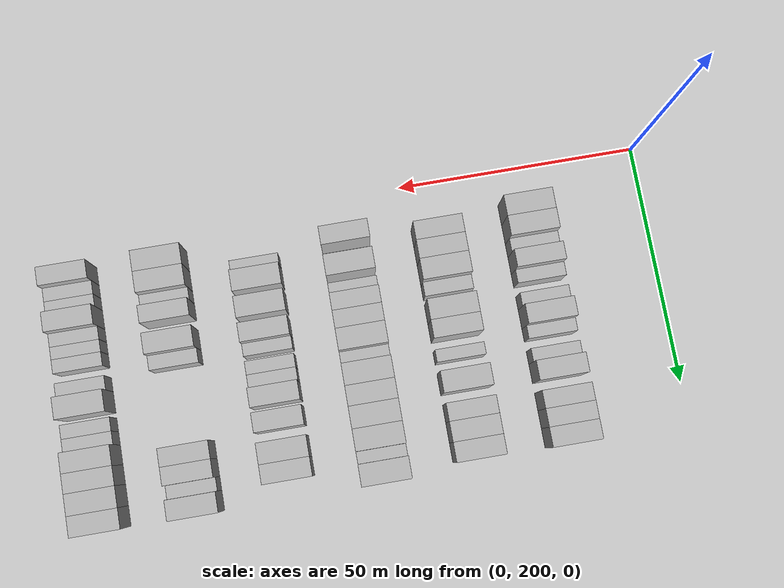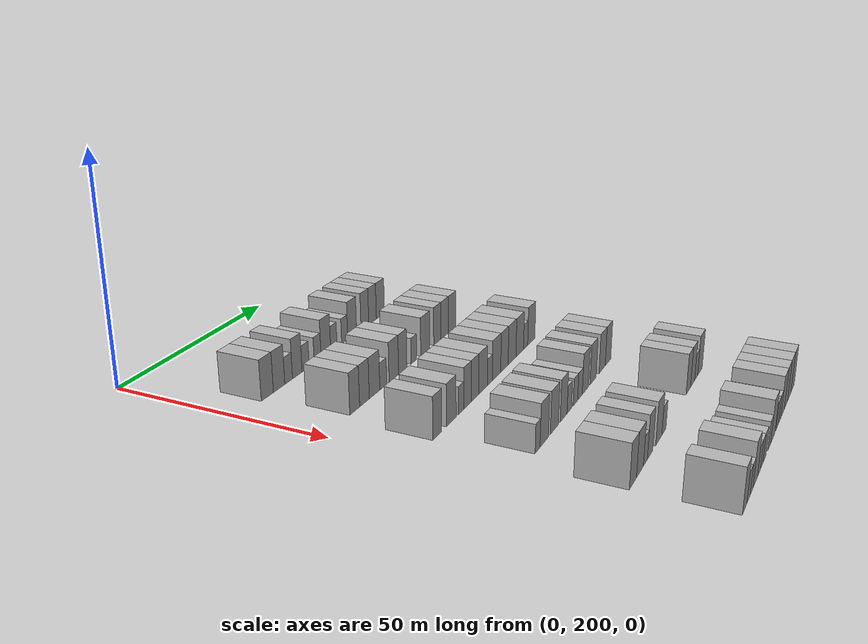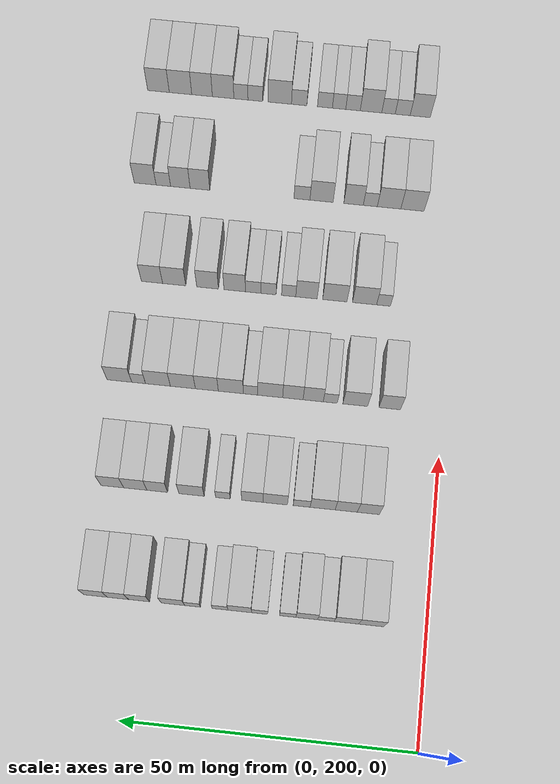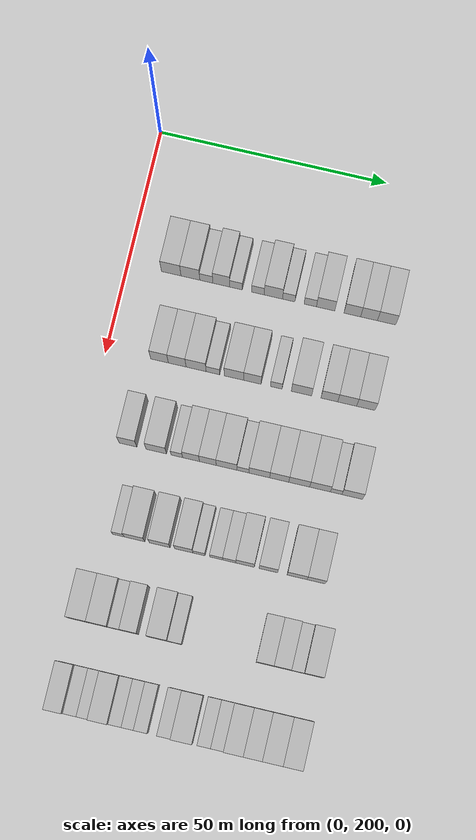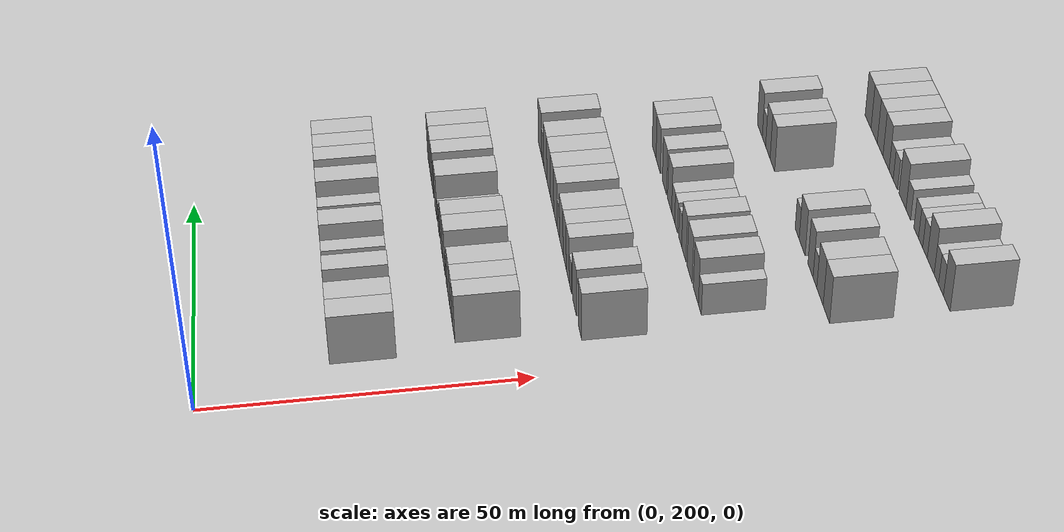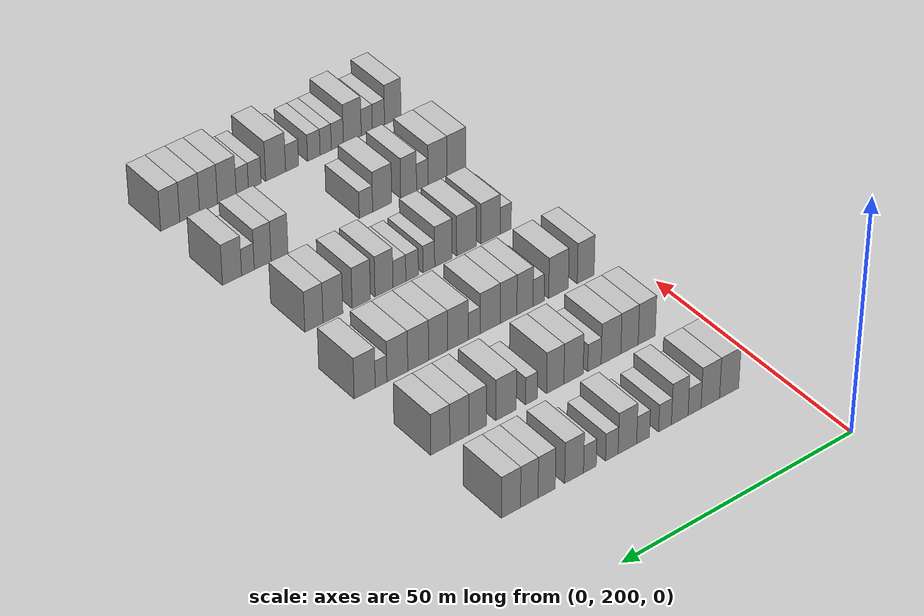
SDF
<sdf version="1.6">
 <world name="default">
  <model name="building_129">
   <static>1</static>
   <pose>25.0000 209.5237 0 0.000000 0.000000 0.000000</pose>
   <link name="link">
    <pose>0 0 4.50 0 0 0</pose>
    <collision name="collision"><geometry><box><size>10.0000 4.2879 9.0000</size></box></geometry></collision>
    <visual name="visual">
     <cast_shadows>0</cast_shadows>
     <geometry><box><size>10.0000 4.2879 9.0000</size></box></geometry>
     <material>
      <script>
       <uri>model://HANNAS_wall/materials/scripts</uri>
       <uri>model://HANNAS_wall/materials/textures</uri>
       <name>vrc/HANNAS_wall</name>
      </script>
     </material>
    </visual>
   </link>
  </model>
  <model name="building_130">
   <static>1</static>
   <pose>25.0000 213.7337 0 0.000000 0.000000 0.000000</pose>
   <link name="link">
    <pose>0 0 4.50 0 0 0</pose>
    <collision name="collision"><geometry><box><size>10.0000 4.1320 9.0000</size></box></geometry></collision>
    <visual name="visual">
     <cast_shadows>0</cast_shadows>
     <geometry><box><size>10.0000 4.1320 9.0000</size></box></geometry>
     <material>
      <script>
       <uri>model://HANNAS_wall/materials/scripts</uri>
       <uri>model://HANNAS_wall/materials/textures</uri>
       <name>vrc/HANNAS_wall</name>
      </script>
     </material>
    </visual>
   </link>
  </model>
  <model name="building_131">
   <static>1</static>
   <pose>25.0000 217.2275 0 0.000000 0.000000 0.000000</pose>
   <link name="link">
    <pose>0 0 3.00 0 0 0</pose>
    <collision name="collision"><geometry><box><size>10.0000 2.8557 6.0000</size></box></geometry></collision>
    <visual name="visual">
     <cast_shadows>0</cast_shadows>
     <geometry><box><size>10.0000 2.8557 6.0000</size></box></geometry>
     <material>
      <script>
       <uri>model://HANNAS_wall/materials/scripts</uri>
       <uri>model://HANNAS_wall/materials/textures</uri>
       <name>vrc/HANNAS_wall</name>
      </script>
     </material>
    </visual>
   </link>
  </model>
  <model name="building_132">
   <static>1</static>
   <pose>25.0000 220.4869 0 0.000000 0.000000 0.000000</pose>
   <link name="link">
    <pose>0 0 4.50 0 0 0</pose>
    <collision name="collision"><geometry><box><size>10.0000 3.6631 9.0000</size></box></geometry></collision>
    <visual name="visual">
     <cast_shadows>0</cast_shadows>
     <geometry><box><size>10.0000 3.6631 9.0000</size></box></geometry>
     <material>
      <script>
       <uri>model://HANNAS_wall/materials/scripts</uri>
       <uri>model://HANNAS_wall/materials/textures</uri>
       <name>vrc/HANNAS_wall</name>
      </script>
     </material>
    </visual>
   </link>
  </model>
  <model name="building_133">
   <static>1</static>
   <pose>25.0000 223.7199 0 0.000000 0.000000 0.000000</pose>
   <link name="link">
    <pose>0 0 3.00 0 0 0</pose>
    <collision name="collision"><geometry><box><size>10.0000 2.8030 6.0000</size></box></geometry></collision>
    <visual name="visual">
     <cast_shadows>0</cast_shadows>
     <geometry><box><size>10.0000 2.8030 6.0000</size></box></geometry>
     <material>
      <script>
       <uri>model://HANNAS_wall/materials/scripts</uri>
       <uri>model://HANNAS_wall/materials/textures</uri>
       <name>vrc/HANNAS_wall</name>
      </script>
     </material>
    </visual>
   </link>
  </model>
  <model name="building_134">
   <static>1</static>
   <pose>25.0000 228.5118 0 0.000000 0.000000 0.000000</pose>
   <link name="link">
    <pose>0 0 3.00 0 0 0</pose>
    <collision name="collision"><geometry><box><size>10.0000 2.7808 6.0000</size></box></geometry></collision>
    <visual name="visual">
     <cast_shadows>0</cast_shadows>
     <geometry><box><size>10.0000 2.7808 6.0000</size></box></geometry>
     <material>
      <script>
       <uri>model://HANNAS_wall/materials/scripts</uri>
       <uri>model://HANNAS_wall/materials/textures</uri>
       <name>vrc/HANNAS_wall</name>
      </script>
     </material>
    </visual>
   </link>
  </model>
  <model name="building_135">
   <static>1</static>
   <pose>25.0000 231.9071 0 0.000000 0.000000 0.000000</pose>
   <link name="link">
    <pose>0 0 4.50 0 0 0</pose>
    <collision name="collision"><geometry><box><size>10.0000 4.0098 9.0000</size></box></geometry></collision>
    <visual name="visual">
     <cast_shadows>0</cast_shadows>
     <geometry><box><size>10.0000 4.0098 9.0000</size></box></geometry>
     <material>
      <script>
       <uri>model://HANNAS_wall/materials/scripts</uri>
       <uri>model://HANNAS_wall/materials/textures</uri>
       <name>vrc/HANNAS_wall</name>
      </script>
     </material>
    </visual>
   </link>
  </model>
  <model name="building_136">
   <static>1</static>
   <pose>25.0000 235.2603 0 0.000000 0.000000 0.000000</pose>
   <link name="link">
    <pose>0 0 3.00 0 0 0</pose>
    <collision name="collision"><geometry><box><size>10.0000 2.6966 6.0000</size></box></geometry></collision>
    <visual name="visual">
     <cast_shadows>0</cast_shadows>
     <geometry><box><size>10.0000 2.6966 6.0000</size></box></geometry>
     <material>
      <script>
       <uri>model://HANNAS_wall/materials/scripts</uri>
       <uri>model://HANNAS_wall/materials/textures</uri>
       <name>vrc/HANNAS_wall</name>
      </script>
     </material>
    </visual>
   </link>
  </model>
  <model name="building_137">
   <static>1</static>
   <pose>25.0000 239.9625 0 0.000000 0.000000 0.000000</pose>
   <link name="link">
    <pose>0 0 3.00 0 0 0</pose>
    <collision name="collision"><geometry><box><size>10.0000 2.7078 6.0000</size></box></geometry></collision>
    <visual name="visual">
     <cast_shadows>0</cast_shadows>
     <geometry><box><size>10.0000 2.7078 6.0000</size></box></geometry>
     <material>
      <script>
       <uri>model://HANNAS_wall/materials/scripts</uri>
       <uri>model://HANNAS_wall/materials/textures</uri>
       <name>vrc/HANNAS_wall</name>
      </script>
     </material>
    </visual>
   </link>
  </model>
  <model name="building_138">
   <static>1</static>
   <pose>25.0000 243.3176 0 0.000000 0.000000 0.000000</pose>
   <link name="link">
    <pose>0 0 4.50 0 0 0</pose>
    <collision name="collision"><geometry><box><size>10.0000 4.0022 9.0000</size></box></geometry></collision>
    <visual name="visual">
     <cast_shadows>0</cast_shadows>
     <geometry><box><size>10.0000 4.0022 9.0000</size></box></geometry>
     <material>
      <script>
       <uri>model://HANNAS_wall/materials/scripts</uri>
       <uri>model://HANNAS_wall/materials/textures</uri>
       <name>vrc/HANNAS_wall</name>
      </script>
     </material>
    </visual>
   </link>
  </model>
  <model name="building_139">
   <static>1</static>
   <pose>25.0000 249.1267 0 0.000000 0.000000 0.000000</pose>
   <link name="link">
    <pose>0 0 4.50 0 0 0</pose>
    <collision name="collision"><geometry><box><size>10.0000 3.6161 9.0000</size></box></geometry></collision>
    <visual name="visual">
     <cast_shadows>0</cast_shadows>
     <geometry><box><size>10.0000 3.6161 9.0000</size></box></geometry>
     <material>
      <script>
       <uri>model://HANNAS_wall/materials/scripts</uri>
       <uri>model://HANNAS_wall/materials/textures</uri>
       <name>vrc/HANNAS_wall</name>
      </script>
     </material>
    </visual>
   </link>
  </model>
  <model name="building_140">
   <static>1</static>
   <pose>25.0000 252.7646 0 0.000000 0.000000 0.000000</pose>
   <link name="link">
    <pose>0 0 4.50 0 0 0</pose>
    <collision name="collision"><geometry><box><size>10.0000 3.6596 9.0000</size></box></geometry></collision>
    <visual name="visual">
     <cast_shadows>0</cast_shadows>
     <geometry><box><size>10.0000 3.6596 9.0000</size></box></geometry>
     <material>
      <script>
       <uri>model://HANNAS_wall/materials/scripts</uri>
       <uri>model://HANNAS_wall/materials/textures</uri>
       <name>vrc/HANNAS_wall</name>
      </script>
     </material>
    </visual>
   </link>
  </model>
  <model name="building_141">
   <static>1</static>
   <pose>25.0000 256.5926 0 0.000000 0.000000 0.000000</pose>
   <link name="link">
    <pose>0 0 4.50 0 0 0</pose>
    <collision name="collision"><geometry><box><size>10.0000 3.9964 9.0000</size></box></geometry></collision>
    <visual name="visual">
     <cast_shadows>0</cast_shadows>
     <geometry><box><size>10.0000 3.9964 9.0000</size></box></geometry>
     <material>
      <script>
       <uri>model://HANNAS_wall/materials/scripts</uri>
       <uri>model://HANNAS_wall/materials/textures</uri>
       <name>vrc/HANNAS_wall</name>
      </script>
     </material>
    </visual>
   </link>
  </model>
  <model name="building_298">
   <static>1</static>
   <pose>44.0000 211.5511 0 0.000000 0.000000 0.000000</pose>
   <link name="link">
    <pose>0 0 4.50 0 0 0</pose>
    <collision name="collision"><geometry><box><size>10.0000 3.8302 9.0000</size></box></geometry></collision>
    <visual name="visual">
     <cast_shadows>0</cast_shadows>
     <geometry><box><size>10.0000 3.8302 9.0000</size></box></geometry>
     <material>
      <script>
       <uri>model://HANNAS_wall/materials/scripts</uri>
       <uri>model://HANNAS_wall/materials/textures</uri>
       <name>vrc/HANNAS_wall</name>
      </script>
     </material>
    </visual>
   </link>
  </model>
  <model name="building_299">
   <static>1</static>
   <pose>44.0000 215.4039 0 0.000000 0.000000 0.000000</pose>
   <link name="link">
    <pose>0 0 4.50 0 0 0</pose>
    <collision name="collision"><geometry><box><size>10.0000 3.8754 9.0000</size></box></geometry></collision>
    <visual name="visual">
     <cast_shadows>0</cast_shadows>
     <geometry><box><size>10.0000 3.8754 9.0000</size></box></geometry>
     <material>
      <script>
       <uri>model://HANNAS_wall/materials/scripts</uri>
       <uri>model://HANNAS_wall/materials/textures</uri>
       <name>vrc/HANNAS_wall</name>
      </script>
     </material>
    </visual>
   </link>
  </model>
  <model name="building_300">
   <static>1</static>
   <pose>44.0000 219.5179 0 0.000000 0.000000 0.000000</pose>
   <link name="link">
    <pose>0 0 4.50 0 0 0</pose>
    <collision name="collision"><geometry><box><size>10.0000 4.3528 9.0000</size></box></geometry></collision>
    <visual name="visual">
     <cast_shadows>0</cast_shadows>
     <geometry><box><size>10.0000 4.3528 9.0000</size></box></geometry>
     <material>
      <script>
       <uri>model://HANNAS_wall/materials/scripts</uri>
       <uri>model://HANNAS_wall/materials/textures</uri>
       <name>vrc/HANNAS_wall</name>
      </script>
     </material>
    </visual>
   </link>
  </model>
  <model name="building_301">
   <static>1</static>
   <pose>44.0000 223.1683 0 0.000000 0.000000 0.000000</pose>
   <link name="link">
    <pose>0 0 3.00 0 0 0</pose>
    <collision name="collision"><geometry><box><size>10.0000 2.9479 6.0000</size></box></geometry></collision>
    <visual name="visual">
     <cast_shadows>0</cast_shadows>
     <geometry><box><size>10.0000 2.9479 6.0000</size></box></geometry>
     <material>
      <script>
       <uri>model://HANNAS_wall/materials/scripts</uri>
       <uri>model://HANNAS_wall/materials/textures</uri>
       <name>vrc/HANNAS_wall</name>
      </script>
     </material>
    </visual>
   </link>
  </model>
  <model name="building_302">
   <static>1</static>
   <pose>44.0000 227.7615 0 0.000000 0.000000 0.000000</pose>
   <link name="link">
    <pose>0 0 4.50 0 0 0</pose>
    <collision name="collision"><geometry><box><size>10.0000 4.2385 9.0000</size></box></geometry></collision>
    <visual name="visual">
     <cast_shadows>0</cast_shadows>
     <geometry><box><size>10.0000 4.2385 9.0000</size></box></geometry>
     <material>
      <script>
       <uri>model://HANNAS_wall/materials/scripts</uri>
       <uri>model://HANNAS_wall/materials/textures</uri>
       <name>vrc/HANNAS_wall</name>
      </script>
     </material>
    </visual>
   </link>
  </model>
  <model name="building_303">
   <static>1</static>
   <pose>44.0000 231.7594 0 0.000000 0.000000 0.000000</pose>
   <link name="link">
    <pose>0 0 4.50 0 0 0</pose>
    <collision name="collision"><geometry><box><size>10.0000 3.7573 9.0000</size></box></geometry></collision>
    <visual name="visual">
     <cast_shadows>0</cast_shadows>
     <geometry><box><size>10.0000 3.7573 9.0000</size></box></geometry>
     <material>
      <script>
       <uri>model://HANNAS_wall/materials/scripts</uri>
       <uri>model://HANNAS_wall/materials/textures</uri>
       <name>vrc/HANNAS_wall</name>
      </script>
     </material>
    </visual>
   </link>
  </model>
  <model name="building_304">
   <static>1</static>
   <pose>44.0000 236.9106 0 0.000000 0.000000 0.000000</pose>
   <link name="link">
    <pose>0 0 3.00 0 0 0</pose>
    <collision name="collision"><geometry><box><size>10.0000 2.5452 6.0000</size></box></geometry></collision>
    <visual name="visual">
     <cast_shadows>0</cast_shadows>
     <geometry><box><size>10.0000 2.5452 6.0000</size></box></geometry>
     <material>
      <script>
       <uri>model://HANNAS_wall/materials/scripts</uri>
       <uri>model://HANNAS_wall/materials/textures</uri>
       <name>vrc/HANNAS_wall</name>
      </script>
     </material>
    </visual>
   </link>
  </model>
  <model name="building_305">
   <static>1</static>
   <pose>44.0000 242.3875 0 0.000000 0.000000 0.000000</pose>
   <link name="link">
    <pose>0 0 4.50 0 0 0</pose>
    <collision name="collision"><geometry><box><size>10.0000 4.4087 9.0000</size></box></geometry></collision>
    <visual name="visual">
     <cast_shadows>0</cast_shadows>
     <geometry><box><size>10.0000 4.4087 9.0000</size></box></geometry>
     <material>
      <script>
       <uri>model://HANNAS_wall/materials/scripts</uri>
       <uri>model://HANNAS_wall/materials/textures</uri>
       <name>vrc/HANNAS_wall</name>
      </script>
     </material>
    </visual>
   </link>
  </model>
  <model name="building_306">
   <static>1</static>
   <pose>44.0000 248.4066 0 0.000000 0.000000 0.000000</pose>
   <link name="link">
    <pose>0 0 4.50 0 0 0</pose>
    <collision name="collision"><geometry><box><size>10.0000 3.6294 9.0000</size></box></geometry></collision>
    <visual name="visual">
     <cast_shadows>0</cast_shadows>
     <geometry><box><size>10.0000 3.6294 9.0000</size></box></geometry>
     <material>
      <script>
       <uri>model://HANNAS_wall/materials/scripts</uri>
       <uri>model://HANNAS_wall/materials/textures</uri>
       <name>vrc/HANNAS_wall</name>
      </script>
     </material>
    </visual>
   </link>
  </model>
  <model name="building_307">
   <static>1</static>
   <pose>44.0000 252.2617 0 0.000000 0.000000 0.000000</pose>
   <link name="link">
    <pose>0 0 4.50 0 0 0</pose>
    <collision name="collision"><geometry><box><size>10.0000 4.0808 9.0000</size></box></geometry></collision>
    <visual name="visual">
     <cast_shadows>0</cast_shadows>
     <geometry><box><size>10.0000 4.0808 9.0000</size></box></geometry>
     <material>
      <script>
       <uri>model://HANNAS_wall/materials/scripts</uri>
       <uri>model://HANNAS_wall/materials/textures</uri>
       <name>vrc/HANNAS_wall</name>
      </script>
     </material>
    </visual>
   </link>
  </model>
  <model name="building_308">
   <static>1</static>
   <pose>44.0000 256.3027 0 0.000000 0.000000 0.000000</pose>
   <link name="link">
    <pose>0 0 4.50 0 0 0</pose>
    <collision name="collision"><geometry><box><size>10.0000 4.0012 9.0000</size></box></geometry></collision>
    <visual name="visual">
     <cast_shadows>0</cast_shadows>
     <geometry><box><size>10.0000 4.0012 9.0000</size></box></geometry>
     <material>
      <script>
       <uri>model://HANNAS_wall/materials/scripts</uri>
       <uri>model://HANNAS_wall/materials/textures</uri>
       <name>vrc/HANNAS_wall</name>
      </script>
     </material>
    </visual>
   </link>
  </model>
  <model name="building_457">
   <static>1</static>
   <pose>63.0000 209.3413 0 0.000000 0.000000 0.000000</pose>
   <link name="link">
    <pose>0 0 4.50 0 0 0</pose>
    <collision name="collision"><geometry><box><size>10.0000 3.8190 9.0000</size></box></geometry></collision>
    <visual name="visual">
     <cast_shadows>0</cast_shadows>
     <geometry><box><size>10.0000 3.8190 9.0000</size></box></geometry>
     <material>
      <script>
       <uri>model://HANNAS_wall/materials/scripts</uri>
       <uri>model://HANNAS_wall/materials/textures</uri>
       <name>vrc/HANNAS_wall</name>
      </script>
     </material>
    </visual>
   </link>
  </model>
  <model name="building_458">
   <static>1</static>
   <pose>63.0000 215.4532 0 0.000000 0.000000 0.000000</pose>
   <link name="link">
    <pose>0 0 4.50 0 0 0</pose>
    <collision name="collision"><geometry><box><size>10.0000 4.4047 9.0000</size></box></geometry></collision>
    <visual name="visual">
     <cast_shadows>0</cast_shadows>
     <geometry><box><size>10.0000 4.4047 9.0000</size></box></geometry>
     <material>
      <script>
       <uri>model://HANNAS_wall/materials/scripts</uri>
       <uri>model://HANNAS_wall/materials/textures</uri>
       <name>vrc/HANNAS_wall</name>
      </script>
     </material>
    </visual>
   </link>
  </model>
  <model name="building_459">
   <static>1</static>
   <pose>63.0000 219.9057 0 0.000000 0.000000 0.000000</pose>
   <link name="link">
    <pose>0 0 3.00 0 0 0</pose>
    <collision name="collision"><geometry><box><size>10.0000 2.5002 6.0000</size></box></geometry></collision>
    <visual name="visual">
     <cast_shadows>0</cast_shadows>
     <geometry><box><size>10.0000 2.5002 6.0000</size></box></geometry>
     <material>
      <script>
       <uri>model://HANNAS_wall/materials/scripts</uri>
       <uri>model://HANNAS_wall/materials/textures</uri>
       <name>vrc/HANNAS_wall</name>
      </script>
     </material>
    </visual>
   </link>
  </model>
  <model name="building_460">
   <static>1</static>
   <pose>63.0000 222.9558 0 0.000000 0.000000 0.000000</pose>
   <link name="link">
    <pose>0 0 4.50 0 0 0</pose>
    <collision name="collision"><geometry><box><size>10.0000 3.6001 9.0000</size></box></geometry></collision>
    <visual name="visual">
     <cast_shadows>0</cast_shadows>
     <geometry><box><size>10.0000 3.6001 9.0000</size></box></geometry>
     <material>
      <script>
       <uri>model://HANNAS_wall/materials/scripts</uri>
       <uri>model://HANNAS_wall/materials/textures</uri>
       <name>vrc/HANNAS_wall</name>
      </script>
     </material>
    </visual>
   </link>
  </model>
  <model name="building_461">
   <static>1</static>
   <pose>63.0000 226.5740 0 0.000000 0.000000 0.000000</pose>
   <link name="link">
    <pose>0 0 4.50 0 0 0</pose>
    <collision name="collision"><geometry><box><size>10.0000 3.6363 9.0000</size></box></geometry></collision>
    <visual name="visual">
     <cast_shadows>0</cast_shadows>
     <geometry><box><size>10.0000 3.6363 9.0000</size></box></geometry>
     <material>
      <script>
       <uri>model://HANNAS_wall/materials/scripts</uri>
       <uri>model://HANNAS_wall/materials/textures</uri>
       <name>vrc/HANNAS_wall</name>
      </script>
     </material>
    </visual>
   </link>
  </model>
  <model name="building_462">
   <static>1</static>
   <pose>63.0000 230.6217 0 0.000000 0.000000 0.000000</pose>
   <link name="link">
    <pose>0 0 4.50 0 0 0</pose>
    <collision name="collision"><geometry><box><size>10.0000 4.4590 9.0000</size></box></geometry></collision>
    <visual name="visual">
     <cast_shadows>0</cast_shadows>
     <geometry><box><size>10.0000 4.4590 9.0000</size></box></geometry>
     <material>
      <script>
       <uri>model://HANNAS_wall/materials/scripts</uri>
       <uri>model://HANNAS_wall/materials/textures</uri>
       <name>vrc/HANNAS_wall</name>
      </script>
     </material>
    </visual>
   </link>
  </model>
  <model name="building_463">
   <static>1</static>
   <pose>63.0000 234.1300 0 0.000000 0.000000 0.000000</pose>
   <link name="link">
    <pose>0 0 3.00 0 0 0</pose>
    <collision name="collision"><geometry><box><size>10.0000 2.5577 6.0000</size></box></geometry></collision>
    <visual name="visual">
     <cast_shadows>0</cast_shadows>
     <geometry><box><size>10.0000 2.5577 6.0000</size></box></geometry>
     <material>
      <script>
       <uri>model://HANNAS_wall/materials/scripts</uri>
       <uri>model://HANNAS_wall/materials/textures</uri>
       <name>vrc/HANNAS_wall</name>
      </script>
     </material>
    </visual>
   </link>
  </model>
  <model name="building_464">
   <static>1</static>
   <pose>63.0000 237.6475 0 0.000000 0.000000 0.000000</pose>
   <link name="link">
    <pose>0 0 4.50 0 0 0</pose>
    <collision name="collision"><geometry><box><size>10.0000 4.4774 9.0000</size></box></geometry></collision>
    <visual name="visual">
     <cast_shadows>0</cast_shadows>
     <geometry><box><size>10.0000 4.4774 9.0000</size></box></geometry>
     <material>
      <script>
       <uri>model://HANNAS_wall/materials/scripts</uri>
       <uri>model://HANNAS_wall/materials/textures</uri>
       <name>vrc/HANNAS_wall</name>
      </script>
     </material>
    </visual>
   </link>
  </model>
  <model name="building_465">
   <static>1</static>
   <pose>63.0000 241.9358 0 0.000000 0.000000 0.000000</pose>
   <link name="link">
    <pose>0 0 4.50 0 0 0</pose>
    <collision name="collision"><geometry><box><size>10.0000 4.0991 9.0000</size></box></geometry></collision>
    <visual name="visual">
     <cast_shadows>0</cast_shadows>
     <geometry><box><size>10.0000 4.0991 9.0000</size></box></geometry>
     <material>
      <script>
       <uri>model://HANNAS_wall/materials/scripts</uri>
       <uri>model://HANNAS_wall/materials/textures</uri>
       <name>vrc/HANNAS_wall</name>
      </script>
     </material>
    </visual>
   </link>
  </model>
  <model name="building_466">
   <static>1</static>
   <pose>63.0000 246.2246 0 0.000000 0.000000 0.000000</pose>
   <link name="link">
    <pose>0 0 4.50 0 0 0</pose>
    <collision name="collision"><geometry><box><size>10.0000 4.4785 9.0000</size></box></geometry></collision>
    <visual name="visual">
     <cast_shadows>0</cast_shadows>
     <geometry><box><size>10.0000 4.4785 9.0000</size></box></geometry>
     <material>
      <script>
       <uri>model://HANNAS_wall/materials/scripts</uri>
       <uri>model://HANNAS_wall/materials/textures</uri>
       <name>vrc/HANNAS_wall</name>
      </script>
     </material>
    </visual>
   </link>
  </model>
  <model name="building_467">
   <static>1</static>
   <pose>63.0000 250.6861 0 0.000000 0.000000 0.000000</pose>
   <link name="link">
    <pose>0 0 4.50 0 0 0</pose>
    <collision name="collision"><geometry><box><size>10.0000 4.4445 9.0000</size></box></geometry></collision>
    <visual name="visual">
     <cast_shadows>0</cast_shadows>
     <geometry><box><size>10.0000 4.4445 9.0000</size></box></geometry>
     <material>
      <script>
       <uri>model://HANNAS_wall/materials/scripts</uri>
       <uri>model://HANNAS_wall/materials/textures</uri>
       <name>vrc/HANNAS_wall</name>
      </script>
     </material>
    </visual>
   </link>
  </model>
  <model name="building_468">
   <static>1</static>
   <pose>63.0000 254.1458 0 0.000000 0.000000 0.000000</pose>
   <link name="link">
    <pose>0 0 3.00 0 0 0</pose>
    <collision name="collision"><geometry><box><size>10.0000 2.4748 6.0000</size></box></geometry></collision>
    <visual name="visual">
     <cast_shadows>0</cast_shadows>
     <geometry><box><size>10.0000 2.4748 6.0000</size></box></geometry>
     <material>
      <script>
       <uri>model://HANNAS_wall/materials/scripts</uri>
       <uri>model://HANNAS_wall/materials/textures</uri>
       <name>vrc/HANNAS_wall</name>
      </script>
     </material>
    </visual>
   </link>
  </model>
  <model name="building_469">
   <static>1</static>
   <pose>63.0000 257.6005 0 0.000000 0.000000 0.000000</pose>
   <link name="link">
    <pose>0 0 4.50 0 0 0</pose>
    <collision name="collision"><geometry><box><size>10.0000 4.4346 9.0000</size></box></geometry></collision>
    <visual name="visual">
     <cast_shadows>0</cast_shadows>
     <geometry><box><size>10.0000 4.4346 9.0000</size></box></geometry>
     <material>
      <script>
       <uri>model://HANNAS_wall/materials/scripts</uri>
       <uri>model://HANNAS_wall/materials/textures</uri>
       <name>vrc/HANNAS_wall</name>
      </script>
     </material>
    </visual>
   </link>
  </model>
  <model name="building_638">
   <static>1</static>
   <pose>82.0000 211.9716 0 0.000000 0.000000 0.000000</pose>
   <link name="link">
    <pose>0 0 3.00 0 0 0</pose>
    <collision name="collision"><geometry><box><size>10.0000 2.5056 6.0000</size></box></geometry></collision>
    <visual name="visual">
     <cast_shadows>0</cast_shadows>
     <geometry><box><size>10.0000 2.5056 6.0000</size></box></geometry>
     <material>
      <script>
       <uri>model://HANNAS_wall/materials/scripts</uri>
       <uri>model://HANNAS_wall/materials/textures</uri>
       <name>vrc/HANNAS_wall</name>
      </script>
     </material>
    </visual>
   </link>
  </model>
  <model name="building_639">
   <static>1</static>
   <pose>82.0000 215.4132 0 0.000000 0.000000 0.000000</pose>
   <link name="link">
    <pose>0 0 4.50 0 0 0</pose>
    <collision name="collision"><geometry><box><size>10.0000 4.3775 9.0000</size></box></geometry></collision>
    <visual name="visual">
     <cast_shadows>0</cast_shadows>
     <geometry><box><size>10.0000 4.3775 9.0000</size></box></geometry>
     <material>
      <script>
       <uri>model://HANNAS_wall/materials/scripts</uri>
       <uri>model://HANNAS_wall/materials/textures</uri>
       <name>vrc/HANNAS_wall</name>
      </script>
     </material>
    </visual>
   </link>
  </model>
  <model name="building_640">
   <static>1</static>
   <pose>82.0000 220.8108 0 0.000000 0.000000 0.000000</pose>
   <link name="link">
    <pose>0 0 4.50 0 0 0</pose>
    <collision name="collision"><geometry><box><size>10.0000 4.4176 9.0000</size></box></geometry></collision>
    <visual name="visual">
     <cast_shadows>0</cast_shadows>
     <geometry><box><size>10.0000 4.4176 9.0000</size></box></geometry>
     <material>
      <script>
       <uri>model://HANNAS_wall/materials/scripts</uri>
       <uri>model://HANNAS_wall/materials/textures</uri>
       <name>vrc/HANNAS_wall</name>
      </script>
     </material>
    </visual>
   </link>
  </model>
  <model name="building_641">
   <static>1</static>
   <pose>82.0000 225.9647 0 0.000000 0.000000 0.000000</pose>
   <link name="link">
    <pose>0 0 4.50 0 0 0</pose>
    <collision name="collision"><geometry><box><size>10.0000 3.8903 9.0000</size></box></geometry></collision>
    <visual name="visual">
     <cast_shadows>0</cast_shadows>
     <geometry><box><size>10.0000 3.8903 9.0000</size></box></geometry>
     <material>
      <script>
       <uri>model://HANNAS_wall/materials/scripts</uri>
       <uri>model://HANNAS_wall/materials/textures</uri>
       <name>vrc/HANNAS_wall</name>
      </script>
     </material>
    </visual>
   </link>
  </model>
  <model name="building_642">
   <static>1</static>
   <pose>82.0000 229.2087 0 0.000000 0.000000 0.000000</pose>
   <link name="link">
    <pose>0 0 3.00 0 0 0</pose>
    <collision name="collision"><geometry><box><size>10.0000 2.5978 6.0000</size></box></geometry></collision>
    <visual name="visual">
     <cast_shadows>0</cast_shadows>
     <geometry><box><size>10.0000 2.5978 6.0000</size></box></geometry>
     <material>
      <script>
       <uri>model://HANNAS_wall/materials/scripts</uri>
       <uri>model://HANNAS_wall/materials/textures</uri>
       <name>vrc/HANNAS_wall</name>
      </script>
     </material>
    </visual>
   </link>
  </model>
  <model name="building_643">
   <static>1</static>
   <pose>82.0000 232.8867 0 0.000000 0.000000 0.000000</pose>
   <link name="link">
    <pose>0 0 3.00 0 0 0</pose>
    <collision name="collision"><geometry><box><size>10.0000 2.7582 6.0000</size></box></geometry></collision>
    <visual name="visual">
     <cast_shadows>0</cast_shadows>
     <geometry><box><size>10.0000 2.7582 6.0000</size></box></geometry>
     <material>
      <script>
       <uri>model://HANNAS_wall/materials/scripts</uri>
       <uri>model://HANNAS_wall/materials/textures</uri>
       <name>vrc/HANNAS_wall</name>
      </script>
     </material>
    </visual>
   </link>
  </model>
  <model name="building_644">
   <static>1</static>
   <pose>82.0000 235.6752 0 0.000000 0.000000 0.000000</pose>
   <link name="link">
    <pose>0 0 3.00 0 0 0</pose>
    <collision name="collision"><geometry><box><size>10.0000 2.8189 6.0000</size></box></geometry></collision>
    <visual name="visual">
     <cast_shadows>0</cast_shadows>
     <geometry><box><size>10.0000 2.8189 6.0000</size></box></geometry>
     <material>
      <script>
       <uri>model://HANNAS_wall/materials/scripts</uri>
       <uri>model://HANNAS_wall/materials/textures</uri>
       <name>vrc/HANNAS_wall</name>
      </script>
     </material>
    </visual>
   </link>
  </model>
  <model name="building_645">
   <static>1</static>
   <pose>82.0000 239.0472 0 0.000000 0.000000 0.000000</pose>
   <link name="link">
    <pose>0 0 4.50 0 0 0</pose>
    <collision name="collision"><geometry><box><size>10.0000 3.9250 9.0000</size></box></geometry></collision>
    <visual name="visual">
     <cast_shadows>0</cast_shadows>
     <geometry><box><size>10.0000 3.9250 9.0000</size></box></geometry>
     <material>
      <script>
       <uri>model://HANNAS_wall/materials/scripts</uri>
       <uri>model://HANNAS_wall/materials/textures</uri>
       <name>vrc/HANNAS_wall</name>
      </script>
     </material>
    </visual>
   </link>
  </model>
  <model name="building_646">
   <static>1</static>
   <pose>82.0000 243.9945 0 0.000000 0.000000 0.000000</pose>
   <link name="link">
    <pose>0 0 4.50 0 0 0</pose>
    <collision name="collision"><geometry><box><size>10.0000 3.9698 9.0000</size></box></geometry></collision>
    <visual name="visual">
     <cast_shadows>0</cast_shadows>
     <geometry><box><size>10.0000 3.9698 9.0000</size></box></geometry>
     <material>
      <script>
       <uri>model://HANNAS_wall/materials/scripts</uri>
       <uri>model://HANNAS_wall/materials/textures</uri>
       <name>vrc/HANNAS_wall</name>
      </script>
     </material>
    </visual>
   </link>
  </model>
  <model name="building_647">
   <static>1</static>
   <pose>82.0000 250.1008 0 0.000000 0.000000 0.000000</pose>
   <link name="link">
    <pose>0 0 4.50 0 0 0</pose>
    <collision name="collision"><geometry><box><size>10.0000 4.2427 9.0000</size></box></geometry></collision>
    <visual name="visual">
     <cast_shadows>0</cast_shadows>
     <geometry><box><size>10.0000 4.2427 9.0000</size></box></geometry>
     <material>
      <script>
       <uri>model://HANNAS_wall/materials/scripts</uri>
       <uri>model://HANNAS_wall/materials/textures</uri>
       <name>vrc/HANNAS_wall</name>
      </script>
     </material>
    </visual>
   </link>
  </model>
  <model name="building_648">
   <static>1</static>
   <pose>82.0000 254.1622 0 0.000000 0.000000 0.000000</pose>
   <link name="link">
    <pose>0 0 4.50 0 0 0</pose>
    <collision name="collision"><geometry><box><size>10.0000 3.8801 9.0000</size></box></geometry></collision>
    <visual name="visual">
     <cast_shadows>0</cast_shadows>
     <geometry><box><size>10.0000 3.8801 9.0000</size></box></geometry>
     <material>
      <script>
       <uri>model://HANNAS_wall/materials/scripts</uri>
       <uri>model://HANNAS_wall/materials/textures</uri>
       <name>vrc/HANNAS_wall</name>
      </script>
     </material>
    </visual>
   </link>
  </model>
  <model name="building_812">
   <static>1</static>
   <pose>101.0000 208.1298 0 0.000000 0.000000 0.000000</pose>
   <link name="link">
    <pose>0 0 4.50 0 0 0</pose>
    <collision name="collision"><geometry><box><size>10.0000 4.3144 9.0000</size></box></geometry></collision>
    <visual name="visual">
     <cast_shadows>0</cast_shadows>
     <geometry><box><size>10.0000 4.3144 9.0000</size></box></geometry>
     <material>
      <script>
       <uri>model://HANNAS_wall/materials/scripts</uri>
       <uri>model://HANNAS_wall/materials/textures</uri>
       <name>vrc/HANNAS_wall</name>
      </script>
     </material>
    </visual>
   </link>
  </model>
  <model name="building_813">
   <static>1</static>
   <pose>101.0000 212.4585 0 0.000000 0.000000 0.000000</pose>
   <link name="link">
    <pose>0 0 4.50 0 0 0</pose>
    <collision name="collision"><geometry><box><size>10.0000 4.3431 9.0000</size></box></geometry></collision>
    <visual name="visual">
     <cast_shadows>0</cast_shadows>
     <geometry><box><size>10.0000 4.3431 9.0000</size></box></geometry>
     <material>
      <script>
       <uri>model://HANNAS_wall/materials/scripts</uri>
       <uri>model://HANNAS_wall/materials/textures</uri>
       <name>vrc/HANNAS_wall</name>
      </script>
     </material>
    </visual>
   </link>
  </model>
  <model name="building_814">
   <static>1</static>
   <pose>101.0000 215.9340 0 0.000000 0.000000 0.000000</pose>
   <link name="link">
    <pose>0 0 3.00 0 0 0</pose>
    <collision name="collision"><geometry><box><size>10.0000 2.6079 6.0000</size></box></geometry></collision>
    <visual name="visual">
     <cast_shadows>0</cast_shadows>
     <geometry><box><size>10.0000 2.6079 6.0000</size></box></geometry>
     <material>
      <script>
       <uri>model://HANNAS_wall/materials/scripts</uri>
       <uri>model://HANNAS_wall/materials/textures</uri>
       <name>vrc/HANNAS_wall</name>
      </script>
     </material>
    </visual>
   </link>
  </model>
  <model name="building_815">
   <static>1</static>
   <pose>101.0000 219.0385 0 0.000000 0.000000 0.000000</pose>
   <link name="link">
    <pose>0 0 4.50 0 0 0</pose>
    <collision name="collision"><geometry><box><size>10.0000 3.6011 9.0000</size></box></geometry></collision>
    <visual name="visual">
     <cast_shadows>0</cast_shadows>
     <geometry><box><size>10.0000 3.6011 9.0000</size></box></geometry>
     <material>
      <script>
       <uri>model://HANNAS_wall/materials/scripts</uri>
       <uri>model://HANNAS_wall/materials/textures</uri>
       <name>vrc/HANNAS_wall</name>
      </script>
     </material>
    </visual>
   </link>
  </model>
  <model name="building_816">
   <static>1</static>
   <pose>101.0000 224.9860 0 0.000000 0.000000 0.000000</pose>
   <link name="link">
    <pose>0 0 4.50 0 0 0</pose>
    <collision name="collision"><geometry><box><size>10.0000 4.2939 9.0000</size></box></geometry></collision>
    <visual name="visual">
     <cast_shadows>0</cast_shadows>
     <geometry><box><size>10.0000 4.2939 9.0000</size></box></geometry>
     <material>
      <script>
       <uri>model://HANNAS_wall/materials/scripts</uri>
       <uri>model://HANNAS_wall/materials/textures</uri>
       <name>vrc/HANNAS_wall</name>
      </script>
     </material>
    </visual>
   </link>
  </model>
  <model name="building_817">
   <static>1</static>
   <pose>101.0000 228.6213 0 0.000000 0.000000 0.000000</pose>
   <link name="link">
    <pose>0 0 3.00 0 0 0</pose>
    <collision name="collision"><geometry><box><size>10.0000 2.9766 6.0000</size></box></geometry></collision>
    <visual name="visual">
     <cast_shadows>0</cast_shadows>
     <geometry><box><size>10.0000 2.9766 6.0000</size></box></geometry>
     <material>
      <script>
       <uri>model://HANNAS_wall/materials/scripts</uri>
       <uri>model://HANNAS_wall/materials/textures</uri>
       <name>vrc/HANNAS_wall</name>
      </script>
     </material>
    </visual>
   </link>
  </model>
  <model name="building_818">
   <static>1</static>
   <pose>101.0000 247.6237 0 0.000000 0.000000 0.000000</pose>
   <link name="link">
    <pose>0 0 4.50 0 0 0</pose>
    <collision name="collision"><geometry><box><size>10.0000 3.6761 9.0000</size></box></geometry></collision>
    <visual name="visual">
     <cast_shadows>0</cast_shadows>
     <geometry><box><size>10.0000 3.6761 9.0000</size></box></geometry>
     <material>
      <script>
       <uri>model://HANNAS_wall/materials/scripts</uri>
       <uri>model://HANNAS_wall/materials/textures</uri>
       <name>vrc/HANNAS_wall</name>
      </script>
     </material>
    </visual>
   </link>
  </model>
  <model name="building_819">
   <static>1</static>
   <pose>101.0000 251.2797 0 0.000000 0.000000 0.000000</pose>
   <link name="link">
    <pose>0 0 4.50 0 0 0</pose>
    <collision name="collision"><geometry><box><size>10.0000 3.6360 9.0000</size></box></geometry></collision>
    <visual name="visual">
     <cast_shadows>0</cast_shadows>
     <geometry><box><size>10.0000 3.6360 9.0000</size></box></geometry>
     <material>
      <script>
       <uri>model://HANNAS_wall/materials/scripts</uri>
       <uri>model://HANNAS_wall/materials/textures</uri>
       <name>vrc/HANNAS_wall</name>
      </script>
     </material>
    </visual>
   </link>
  </model>
  <model name="building_820">
   <static>1</static>
   <pose>101.0000 254.4591 0 0.000000 0.000000 0.000000</pose>
   <link name="link">
    <pose>0 0 3.00 0 0 0</pose>
    <collision name="collision"><geometry><box><size>10.0000 2.7227 6.0000</size></box></geometry></collision>
    <visual name="visual">
     <cast_shadows>0</cast_shadows>
     <geometry><box><size>10.0000 2.7227 6.0000</size></box></geometry>
     <material>
      <script>
       <uri>model://HANNAS_wall/materials/scripts</uri>
       <uri>model://HANNAS_wall/materials/textures</uri>
       <name>vrc/HANNAS_wall</name>
      </script>
     </material>
    </visual>
   </link>
  </model>
  <model name="building_821">
   <static>1</static>
   <pose>101.0000 257.8637 0 0.000000 0.000000 0.000000</pose>
   <link name="link">
    <pose>0 0 4.50 0 0 0</pose>
    <collision name="collision"><geometry><box><size>10.0000 4.0866 9.0000</size></box></geometry></collision>
    <visual name="visual">
     <cast_shadows>0</cast_shadows>
     <geometry><box><size>10.0000 4.0866 9.0000</size></box></geometry>
     <material>
      <script>
       <uri>model://HANNAS_wall/materials/scripts</uri>
       <uri>model://HANNAS_wall/materials/textures</uri>
       <name>vrc/HANNAS_wall</name>
      </script>
     </material>
    </visual>
   </link>
  </model>
  <model name="building_975">
   <static>1</static>
   <pose>120.0000 208.0848 0 0.000000 0.000000 0.000000</pose>
   <link name="link">
    <pose>0 0 4.50 0 0 0</pose>
    <collision name="collision"><geometry><box><size>10.0000 3.8035 9.0000</size></box></geometry></collision>
    <visual name="visual">
     <cast_shadows>0</cast_shadows>
     <geometry><box><size>10.0000 3.8035 9.0000</size></box></geometry>
     <material>
      <script>
       <uri>model://HANNAS_wall/materials/scripts</uri>
       <uri>model://HANNAS_wall/materials/textures</uri>
       <name>vrc/HANNAS_wall</name>
      </script>
     </material>
    </visual>
   </link>
  </model>
  <model name="building_976">
   <static>1</static>
   <pose>120.0000 211.3910 0 0.000000 0.000000 0.000000</pose>
   <link name="link">
    <pose>0 0 3.00 0 0 0</pose>
    <collision name="collision"><geometry><box><size>10.0000 2.8088 6.0000</size></box></geometry></collision>
    <visual name="visual">
     <cast_shadows>0</cast_shadows>
     <geometry><box><size>10.0000 2.8088 6.0000</size></box></geometry>
     <material>
      <script>
       <uri>model://HANNAS_wall/materials/scripts</uri>
       <uri>model://HANNAS_wall/materials/textures</uri>
       <name>vrc/HANNAS_wall</name>
      </script>
     </material>
    </visual>
   </link>
  </model>
  <model name="building_977">
   <static>1</static>
   <pose>120.0000 214.0659 0 0.000000 0.000000 0.000000</pose>
   <link name="link">
    <pose>0 0 3.00 0 0 0</pose>
    <collision name="collision"><geometry><box><size>10.0000 2.5410 6.0000</size></box></geometry></collision>
    <visual name="visual">
     <cast_shadows>0</cast_shadows>
     <geometry><box><size>10.0000 2.5410 6.0000</size></box></geometry>
     <material>
      <script>
       <uri>model://HANNAS_wall/materials/scripts</uri>
       <uri>model://HANNAS_wall/materials/textures</uri>
       <name>vrc/HANNAS_wall</name>
      </script>
     </material>
    </visual>
   </link>
  </model>
  <model name="building_978">
   <static>1</static>
   <pose>120.0000 217.3773 0 0.000000 0.000000 0.000000</pose>
   <link name="link">
    <pose>0 0 4.50 0 0 0</pose>
    <collision name="collision"><geometry><box><size>10.0000 4.0818 9.0000</size></box></geometry></collision>
    <visual name="visual">
     <cast_shadows>0</cast_shadows>
     <geometry><box><size>10.0000 4.0818 9.0000</size></box></geometry>
     <material>
      <script>
       <uri>model://HANNAS_wall/materials/scripts</uri>
       <uri>model://HANNAS_wall/materials/textures</uri>
       <name>vrc/HANNAS_wall</name>
      </script>
     </material>
    </visual>
   </link>
  </model>
  <model name="building_979">
   <static>1</static>
   <pose>120.0000 220.7891 0 0.000000 0.000000 0.000000</pose>
   <link name="link">
    <pose>0 0 3.00 0 0 0</pose>
    <collision name="collision"><geometry><box><size>10.0000 2.7418 6.0000</size></box></geometry></collision>
    <visual name="visual">
     <cast_shadows>0</cast_shadows>
     <geometry><box><size>10.0000 2.7418 6.0000</size></box></geometry>
     <material>
      <script>
       <uri>model://HANNAS_wall/materials/scripts</uri>
       <uri>model://HANNAS_wall/materials/textures</uri>
       <name>vrc/HANNAS_wall</name>
      </script>
     </material>
    </visual>
   </link>
  </model>
  <model name="building_980">
   <static>1</static>
   <pose>120.0000 223.4276 0 0.000000 0.000000 0.000000</pose>
   <link name="link">
    <pose>0 0 3.00 0 0 0</pose>
    <collision name="collision"><geometry><box><size>10.0000 2.5351 6.0000</size></box></geometry></collision>
    <visual name="visual">
     <cast_shadows>0</cast_shadows>
     <geometry><box><size>10.0000 2.5351 6.0000</size></box></geometry>
     <material>
      <script>
       <uri>model://HANNAS_wall/materials/scripts</uri>
       <uri>model://HANNAS_wall/materials/textures</uri>
       <name>vrc/HANNAS_wall</name>
      </script>
     </material>
    </visual>
   </link>
  </model>
  <model name="building_981">
   <static>1</static>
   <pose>120.0000 226.1120 0 0.000000 0.000000 0.000000</pose>
   <link name="link">
    <pose>0 0 3.00 0 0 0</pose>
    <collision name="collision"><geometry><box><size>10.0000 2.8337 6.0000</size></box></geometry></collision>
    <visual name="visual">
     <cast_shadows>0</cast_shadows>
     <geometry><box><size>10.0000 2.8337 6.0000</size></box></geometry>
     <material>
      <script>
       <uri>model://HANNAS_wall/materials/scripts</uri>
       <uri>model://HANNAS_wall/materials/textures</uri>
       <name>vrc/HANNAS_wall</name>
      </script>
     </material>
    </visual>
   </link>
  </model>
  <model name="building_982">
   <static>1</static>
   <pose>120.0000 230.9914 0 0.000000 0.000000 0.000000</pose>
   <link name="link">
    <pose>0 0 3.00 0 0 0</pose>
    <collision name="collision"><geometry><box><size>10.0000 2.9251 6.0000</size></box></geometry></collision>
    <visual name="visual">
     <cast_shadows>0</cast_shadows>
     <geometry><box><size>10.0000 2.9251 6.0000</size></box></geometry>
     <material>
      <script>
       <uri>model://HANNAS_wall/materials/scripts</uri>
       <uri>model://HANNAS_wall/materials/textures</uri>
       <name>vrc/HANNAS_wall</name>
      </script>
     </material>
    </visual>
   </link>
  </model>
  <model name="building_983">
   <static>1</static>
   <pose>120.0000 234.6765 0 0.000000 0.000000 0.000000</pose>
   <link name="link">
    <pose>0 0 4.50 0 0 0</pose>
    <collision name="collision"><geometry><box><size>10.0000 4.4450 9.0000</size></box></geometry></collision>
    <visual name="visual">
     <cast_shadows>0</cast_shadows>
     <geometry><box><size>10.0000 4.4450 9.0000</size></box></geometry>
     <material>
      <script>
       <uri>model://HANNAS_wall/materials/scripts</uri>
       <uri>model://HANNAS_wall/materials/textures</uri>
       <name>vrc/HANNAS_wall</name>
      </script>
     </material>
    </visual>
   </link>
  </model>
  <model name="building_984">
   <static>1</static>
   <pose>120.0000 239.3071 0 0.000000 0.000000 0.000000</pose>
   <link name="link">
    <pose>0 0 3.00 0 0 0</pose>
    <collision name="collision"><geometry><box><size>10.0000 2.8162 6.0000</size></box></geometry></collision>
    <visual name="visual">
     <cast_shadows>0</cast_shadows>
     <geometry><box><size>10.0000 2.8162 6.0000</size></box></geometry>
     <material>
      <script>
       <uri>model://HANNAS_wall/materials/scripts</uri>
       <uri>model://HANNAS_wall/materials/textures</uri>
       <name>vrc/HANNAS_wall</name>
      </script>
     </material>
    </visual>
   </link>
  </model>
  <model name="building_985">
   <static>1</static>
   <pose>120.0000 242.0596 0 0.000000 0.000000 0.000000</pose>
   <link name="link">
    <pose>0 0 3.00 0 0 0</pose>
    <collision name="collision"><geometry><box><size>10.0000 2.6887 6.0000</size></box></geometry></collision>
    <visual name="visual">
     <cast_shadows>0</cast_shadows>
     <geometry><box><size>10.0000 2.6887 6.0000</size></box></geometry>
     <material>
      <script>
       <uri>model://HANNAS_wall/materials/scripts</uri>
       <uri>model://HANNAS_wall/materials/textures</uri>
       <name>vrc/HANNAS_wall</name>
      </script>
     </material>
    </visual>
   </link>
  </model>
  <model name="building_986">
   <static>1</static>
   <pose>120.0000 245.4493 0 0.000000 0.000000 0.000000</pose>
   <link name="link">
    <pose>0 0 4.50 0 0 0</pose>
    <collision name="collision"><geometry><box><size>10.0000 4.0907 9.0000</size></box></geometry></collision>
    <visual name="visual">
     <cast_shadows>0</cast_shadows>
     <geometry><box><size>10.0000 4.0907 9.0000</size></box></geometry>
     <material>
      <script>
       <uri>model://HANNAS_wall/materials/scripts</uri>
       <uri>model://HANNAS_wall/materials/textures</uri>
       <name>vrc/HANNAS_wall</name>
      </script>
     </material>
    </visual>
   </link>
  </model>
  <model name="building_987">
   <static>1</static>
   <pose>120.0000 249.4563 0 0.000000 0.000000 0.000000</pose>
   <link name="link">
    <pose>0 0 4.50 0 0 0</pose>
    <collision name="collision"><geometry><box><size>10.0000 3.9232 9.0000</size></box></geometry></collision>
    <visual name="visual">
     <cast_shadows>0</cast_shadows>
     <geometry><box><size>10.0000 3.9232 9.0000</size></box></geometry>
     <material>
      <script>
       <uri>model://HANNAS_wall/materials/scripts</uri>
       <uri>model://HANNAS_wall/materials/textures</uri>
       <name>vrc/HANNAS_wall</name>
      </script>
     </material>
    </visual>
   </link>
  </model>
  <model name="building_988">
   <static>1</static>
   <pose>120.0000 253.5622 0 0.000000 0.000000 0.000000</pose>
   <link name="link">
    <pose>0 0 4.50 0 0 0</pose>
    <collision name="collision"><geometry><box><size>10.0000 4.2885 9.0000</size></box></geometry></collision>
    <visual name="visual">
     <cast_shadows>0</cast_shadows>
     <geometry><box><size>10.0000 4.2885 9.0000</size></box></geometry>
     <material>
      <script>
       <uri>model://HANNAS_wall/materials/scripts</uri>
       <uri>model://HANNAS_wall/materials/textures</uri>
       <name>vrc/HANNAS_wall</name>
      </script>
     </material>
    </visual>
   </link>
  </model>
  <model name="building_989">
   <static>1</static>
   <pose>120.0000 257.7665 0 0.000000 0.000000 0.000000</pose>
   <link name="link">
    <pose>0 0 4.50 0 0 0</pose>
    <collision name="collision"><geometry><box><size>10.0000 4.1200 9.0000</size></box></geometry></collision>
    <visual name="visual">
     <cast_shadows>0</cast_shadows>
     <geometry><box><size>10.0000 4.1200 9.0000</size></box></geometry>
     <material>
      <script>
       <uri>model://HANNAS_wall/materials/scripts</uri>
       <uri>model://HANNAS_wall/materials/textures</uri>
       <name>vrc/HANNAS_wall</name>
      </script>
     </material>
    </visual>
   </link>
  </model>
 </world>
</sdf>
